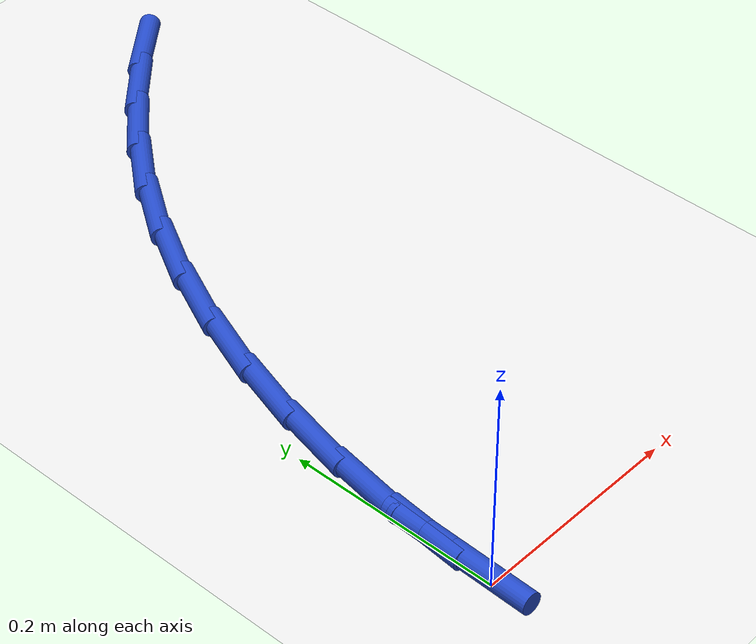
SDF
<sdf version="1.6">
 <world name="default">
  <model name="ground_plane">
   <static>1</static>
   <link name="link">
    <collision name="collision">
     <geometry><plane><normal>0 0 1</normal><size>100 100</size></plane></geometry>
     <surface><friction><ode><mu>100</mu><mu2>50</mu2></ode></friction></surface>
    </collision>
    <visual name="visual">
     <cast_shadows>0</cast_shadows>
     <geometry><plane><normal>0 0 1</normal><size>100 100</size></plane></geometry>
     <material>
      <script><uri>file://media/materials/scripts/gazebo.material</uri><name>Gazebo/WhiteGlow</name></script>
     </material>
    </visual>
   </link>
  </model>
  <model name="line">
   <link name="link_1">
    <pose>0.0020637730407157507 0.06703342233433487 0.01 0 1.57 1.4770232689174103</pose>
    <collision name="collision">
     <geometry><cylinder><radius>0.01</radius><length>0.08</length></cylinder></geometry>
    </collision>
    <visual name="visual">
     <material>
      <script><name>Gazebo/Blue</name><uri>file://media/materials/scripts/gazebo.material</uri></script>
     </material>
     <geometry><cylinder><radius>0.01</radius><length>0.08</length></cylinder></geometry>
    </visual>
   </link>
   <link name="link_2">
    <pose>0.008352502957738438 0.1339000273763866 0.01 0 1.57 1.4135534623564667</pose>
    <collision name="collision">
     <geometry><cylinder><radius>0.01</radius><length>0.08</length></cylinder></geometry>
    </collision>
    <visual name="visual">
     <material>
      <script><name>Gazebo/Blue</name><uri>file://media/materials/scripts/gazebo.material</uri></script>
     </material>
     <geometry><cylinder><radius>0.01</radius><length>0.08</length></cylinder></geometry>
    </visual>
   </link>
   <link name="link_3">
    <pose>0.018847534514471423 0.20009311672787725 0.01 0 1.57 1.3486800132767836</pose>
    <collision name="collision">
     <geometry><cylinder><radius>0.01</radius><length>0.08</length></cylinder></geometry>
    </collision>
    <visual name="visual">
     <material>
      <script><name>Gazebo/Blue</name><uri>file://media/materials/scripts/gazebo.material</uri></script>
     </material>
     <geometry><cylinder><radius>0.01</radius><length>0.08</length></cylinder></geometry>
    </visual>
   </link>
   <link name="link_4">
    <pose>0.03353021247431803 0.2651059919905288 0.01 0 1.57 1.2814577751073444</pose>
    <collision name="collision">
     <geometry><cylinder><radius>0.01</radius><length>0.08</length></cylinder></geometry>
    </collision>
    <visual name="visual">
     <material>
      <script><name>Gazebo/Blue</name><uri>file://media/materials/scripts/gazebo.material</uri></script>
     </material>
     <geometry><cylinder><radius>0.01</radius><length>0.08</length></cylinder></geometry>
    </visual>
   </link>
   <link name="link_5">
    <pose>0.05238188160068161 0.3284319547660635 0.01 0 1.57 1.2109164941252237</pose>
    <collision name="collision">
     <geometry><cylinder><radius>0.01</radius><length>0.08</length></cylinder></geometry>
    </collision>
    <visual name="visual">
     <material>
      <script><name>Gazebo/Blue</name><uri>file://media/materials/scripts/gazebo.material</uri></script>
     </material>
     <geometry><cylinder><radius>0.01</radius><length>0.08</length></cylinder></geometry>
    </visual>
   </link>
   <link name="link_6">
    <pose>0.07538388665696544 0.3895643066562032 0.01 0 1.57 1.1360624326084727</pose>
    <collision name="collision">
     <geometry><cylinder><radius>0.01</radius><length>0.08</length></cylinder></geometry>
    </collision>
    <visual name="visual">
     <material>
      <script><name>Gazebo/Blue</name><uri>file://media/materials/scripts/gazebo.material</uri></script>
     </material>
     <geometry><cylinder><radius>0.01</radius><length>0.08</length></cylinder></geometry>
    </visual>
   </link>
   <link name="link_7">
    <pose>0.1025175724065729 0.44799634926267007 0.01 0 1.57 1.0558982759347242</pose>
    <collision name="collision">
     <geometry><cylinder><radius>0.01</radius><length>0.08</length></cylinder></geometry>
    </collision>
    <visual name="visual">
     <material>
      <script><name>Gazebo/Blue</name><uri>file://media/materials/scripts/gazebo.material</uri></script>
     </material>
     <geometry><cylinder><radius>0.01</radius><length>0.08</length></cylinder></geometry>
    </visual>
   </link>
   <link name="link_8">
    <pose>0.13376428361290732 0.5032213841871861 0.01 0 1.57 0.9695193658787012</pose>
    <collision name="collision">
     <geometry><cylinder><radius>0.01</radius><length>0.08</length></cylinder></geometry>
    </collision>
    <visual name="visual">
     <material>
      <script><name>Gazebo/Blue</name><uri>file://media/materials/scripts/gazebo.material</uri></script>
     </material>
     <geometry><cylinder><radius>0.01</radius><length>0.08</length></cylinder></geometry>
    </visual>
   </link>
   <link name="link_9">
    <pose>0.16910426477073426 0.554736409296409 0.01 0 1.57 0.8808189825806454</pose>
    <collision name="collision">
     <geometry><cylinder><radius>0.01</radius><length>0.08</length></cylinder></geometry>
    </collision>
    <visual name="visual">
     <material>
      <script><name>Gazebo/Blue</name><uri>file://media/materials/scripts/gazebo.material</uri></script>
     </material>
     <geometry><cylinder><radius>0.01</radius><length>0.08</length></cylinder></geometry>
    </visual>
   </link>
   <link name="link_10">
    <pose>0.20841829433696143 0.6023725706962363 0.01 0 1.57 0.7990763564993858</pose>
    <collision name="collision">
     <geometry><cylinder><radius>0.01</radius><length>0.08</length></cylinder></geometry>
    </collision>
    <visual name="visual">
     <material>
      <script><name>Gazebo/Blue</name><uri>file://media/materials/scripts/gazebo.material</uri></script>
     </material>
     <geometry><cylinder><radius>0.01</radius><length>0.08</length></cylinder></geometry>
    </visual>
   </link>
   <link name="link_11">
    <pose>0.2514098584405786 0.6465566139602893 0.01 0 1.57 0.7268399783531951</pose>
    <collision name="collision">
     <geometry><cylinder><radius>0.01</radius><length>0.08</length></cylinder></geometry>
    </collision>
    <visual name="visual">
     <material>
      <script><name>Gazebo/Blue</name><uri>file://media/materials/scripts/gazebo.material</uri></script>
     </material>
     <geometry><cylinder><radius>0.01</radius><length>0.08</length></cylinder></geometry>
    </visual>
   </link>
   <link name="link_12">
    <pose>0.2977641282827479 0.6877768122048286 0.01 0 1.57 0.6650756724825063</pose>
    <collision name="collision">
     <geometry><cylinder><radius>0.01</radius><length>0.08</length></cylinder></geometry>
    </collision>
    <visual name="visual">
     <material>
      <script><name>Gazebo/Blue</name><uri>file://media/materials/scripts/gazebo.material</uri></script>
     </material>
     <geometry><cylinder><radius>0.01</radius><length>0.08</length></cylinder></geometry>
    </visual>
   </link>
   <link name="link_110">
    <pose>3.469446951953614e-17 1.8041124150158794e-16 0.01 0 1.57 1.539922551919479</pose>
    <collision name="collision">
     <geometry><cylinder><radius>0.01</radius><length>0.08</length></cylinder></geometry>
    </collision>
    <visual name="visual">
     <material>
      <script><name>Gazebo/Blue</name><uri>file://media/materials/scripts/gazebo.material</uri></script>
     </material>
     <geometry><cylinder><radius>0.01</radius><length>0.08</length></cylinder></geometry>
    </visual>
   </link>
   <link name="link_111">
    <pose>0.002071436559800511 0.06707240591111818 0.01 0 1.57 1.5399225519194795</pose>
    <collision name="collision">
     <geometry><cylinder><radius>0.01</radius><length>0.08</length></cylinder></geometry>
    </collision>
    <visual name="visual">
     <material>
      <script><name>Gazebo/Blue</name><uri>file://media/materials/scripts/gazebo.material</uri></script>
     </material>
     <geometry><cylinder><radius>0.01</radius><length>0.08</length></cylinder></geometry>
    </visual>
   </link>
  </model>
 </world>
</sdf>
